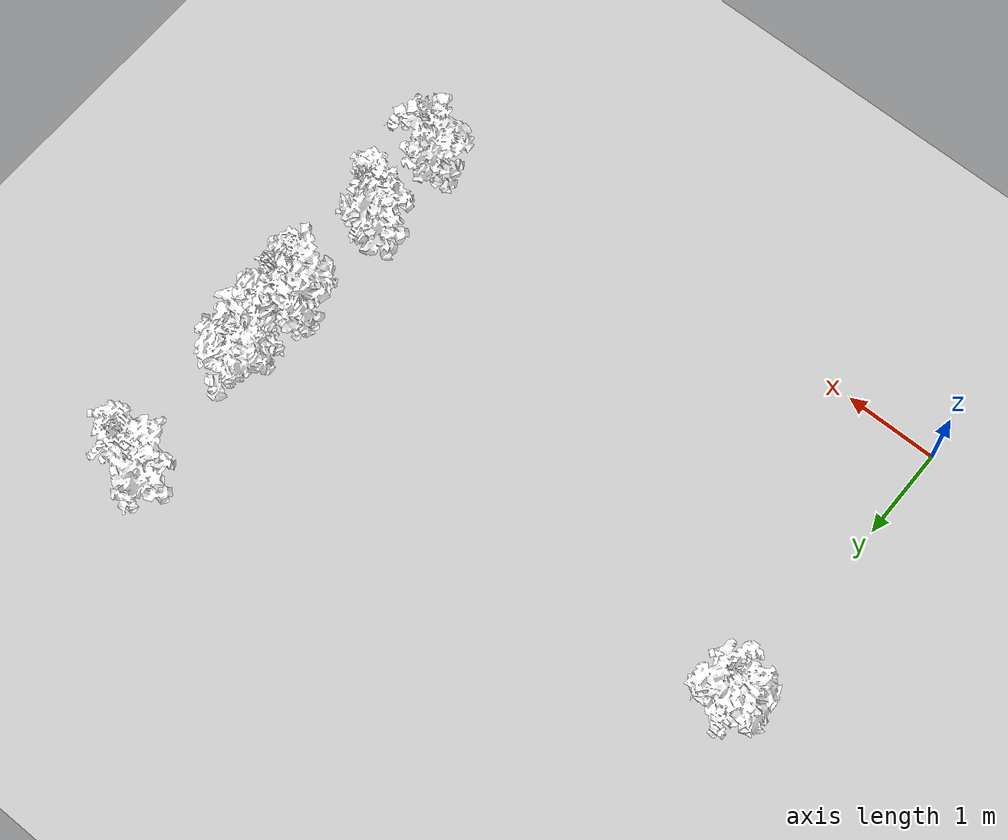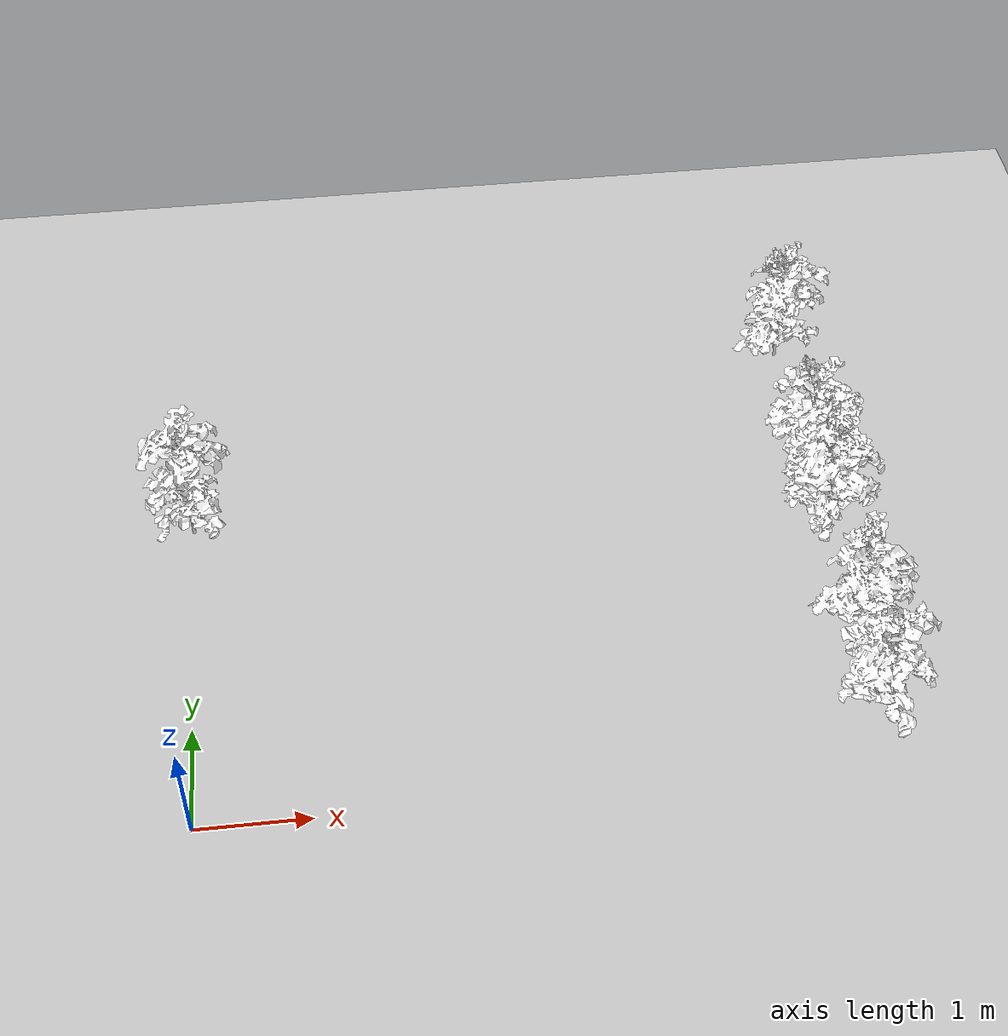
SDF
<sdf version="1.7">
 <world name="field">
  <physics name="1ms" type="ignored">
   <max_step_size>0.001</max_step_size>
   <real_time_factor>1</real_time_factor>
   <real_time_update_rate>1000</real_time_update_rate>
  </physics>
  <plugin name="ignition::gazebo::systems::Physics" filename="ignition-gazebo-physics-system"/>
  <plugin name="ignition::gazebo::systems::UserCommands" filename="ignition-gazebo-user-commands-system"/>
  <plugin name="ignition::gazebo::systems::SceneBroadcaster" filename="ignition-gazebo-scene-broadcaster-system"/>
  <plugin filename="ignition-gazebo-sensors-system" name="ignition::gazebo::systems::Sensors">
   <render_engine>ogre2</render_engine>
  </plugin>
  <scene><ambient>1 1 1 1</ambient><background>0.8 0.8 0.8 1</background><shadows>1</shadows></scene>
  <light name="sun" type="directional">
   <pose>0 0 10 0 -0 0</pose>
   <diffuse>0.8 0.8 0.8 1</diffuse>
   <specular>0.8 0.8 0.8 1</specular>
   <attenuation>
    <range>1000</range>
    <constant>0.9</constant>
    <linear>0.01</linear>
    <quadratic>0.001</quadratic>
   </attenuation>
   <direction>-0.5 0.1 -0.9</direction>
   <spot><inner_angle>0</inner_angle><outer_angle>0</outer_angle><falloff>0</falloff></spot>
  </light>
  <gravity>0 0 -9.8</gravity>
  <magnetic_field>6e-06 2.3e-05 -4.2e-05</magnetic_field>
  <atmosphere type="adiabatic"/>
  <include><uri>ground</uri><name>ground</name><pose>5.0 5.0 0 0 0 0</pose></include>
  <include><uri>tomato_11</uri><name>tomato_11</name><pose>0.0 3.3 0 0 0 0</pose></include>
  <include><uri>tomato_102</uri><name>tomato_102</name><pose>5.8999999999999995 0.6 0 0 0 0</pose></include>
  <include><uri>tomato_105</uri><name>tomato_105</name><pose>5.8999999999999995 1.5 0 0 0 0</pose></include>
  <include>
   <uri>tomato_109</uri>
   <name>tomato_109</name>
   <pose>5.8999999999999995 2.6999999999999997 0 0 0 0</pose>
  </include>
  <include><uri>tomato_110</uri><name>tomato_110</name><pose>5.8999999999999995 3.0 0 0 0 0</pose></include>
  <include>
   <uri>tomato_112</uri>
   <name>tomato_112</name>
   <pose>5.8999999999999995 3.5999999999999996 0 0 0 0</pose>
  </include>
  <include><uri>tomato_117</uri><name>tomato_117</name><pose>5.8999999999999995 5.1 0 0 0 0</pose></include>
 </world>
</sdf>

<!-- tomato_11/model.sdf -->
<sdf version="1.6">
  <model name="tomato_11">
    <static>true</static>
    <link name="link">
      <collision name="collision">
        <geometry>
          <box>
            <size>.1 .1 1</size>
          </box>
        </geometry>
      </collision>
      <visual name="branch">
        <geometry>
          <mesh>
            <uri>file://tomato_11/meshes/tomato.dae</uri>
            <submesh>
              <name>Branch1</name>
            </submesh>
          </mesh>
        </geometry>
        <material>
          <diffuse>1.0 1.0 1.0</diffuse>
          <pbr>
            <metal>
              <albedo_map>file://tomato_11/materials/textures/AG15brn1.png</albedo_map>
            </metal>
          </pbr>
        </material>
          <plugin filename="ignition-gazebo-label-system" name="ignition::gazebo::systems::Label">
            <label>2</label>
          </plugin>
      </visual>
      <visual name="leaf1">
        <geometry>
          <mesh>
            <uri>file://tomato_11/meshes/tomato.dae</uri>
            <submesh>
              <name>Leaf1</name>
            </submesh>
          </mesh>
        </geometry>
        <material>
          <diffuse>1.0 1.0 1.0</diffuse>
          <pbr>
            <metal>
              <albedo_map>file://tomato_11/materials/textures/AG15lef1.png</albedo_map>
            </metal>
          </pbr>
        </material>
          <plugin filename="ignition-gazebo-label-system" name="ignition::gazebo::systems::Label">
            <label>3</label>
          </plugin>
      </visual>
      <visual name="leaf2">
        <geometry>
          <mesh>
            <uri>file://tomato_11/meshes/tomato.dae</uri>
            <submesh>
              <name>Leaf2</name>
            </submesh>
          </mesh>
        </geometry>
        <material>
          <diffuse>1.0 1.0 1.0</diffuse>
          <pbr>
            <metal>
              <albedo_map>file://tomato_11/materials/textures/AG15lef2.png</albedo_map>
            </metal>
          </pbr>
        </material>
          <plugin filename="ignition-gazebo-label-system" name="ignition::gazebo::systems::Label">
            <label>3</label>
          </plugin>
      </visual>
      <visual name="fruit1">
        <geometry>
          <mesh>
            <uri>file://tomato_11/meshes/tomato.dae</uri>
            <submesh>
              <name>Fruit1</name>
            </submesh>
          </mesh>
        </geometry>
        <material>
          <diffuse>1.0 1.0 1.0</diffuse>
          <pbr>
            <metal>
              <albedo_map>file://tomato_11/materials/textures/AG15frt1.png</albedo_map>
            </metal>
          </pbr>
        </material>
          <plugin filename="ignition-gazebo-label-system" name="ignition::gazebo::systems::Label">
            <label>4</label>
          </plugin>
      </visual>
      <visual name="fruit2">
        <geometry>
          <mesh>
            <uri>file://tomato_11/meshes/tomato.dae</uri>
            <submesh>
              <name>Fruit2</name>
            </submesh>
          </mesh>
        </geometry>
        <material>
          <diffuse>1.0 1.0 1.0</diffuse>
          <pbr>
            <metal>
              <albedo_map>file://tomato_11/materials/textures/AG15frt2.png</albedo_map>
            </metal>
          </pbr>
        </material>
          <plugin filename="ignition-gazebo-label-system" name="ignition::gazebo::systems::Label">
            <label>4</label>
          </plugin>
      </visual>
      <visual name="fruit3">
        <geometry>
          <mesh>
            <uri>file://tomato_11/meshes/tomato.dae</uri>
            <submesh>
              <name>Fruit3</name>
            </submesh>
          </mesh>
        </geometry>
        <material>
          <diffuse>1.0 1.0 1.0</diffuse>
          <pbr>
            <metal>
              <albedo_map>file://tomato_11/materials/textures/AG15frt3.png</albedo_map>
            </metal>
          </pbr>
        </material>
      </visual>
          <plugin filename="ignition-gazebo-label-system" name="ignition::gazebo::systems::Label">
            <label>4</label>
          </plugin>
      <visual name="fruit4">
        <geometry>
          <mesh>
            <uri>file://tomato_11/meshes/tomato.dae</uri>
            <submesh>
              <name>Fruit4</name>
            </submesh>
          </mesh>
        </geometry>
        <material>
          <diffuse>1.0 1.0 1.0</diffuse>
          <pbr>
            <metal>
              <albedo_map>file://tomato_11/materials/textures/AG15frt4.png</albedo_map>
            </metal>
          </pbr>
        </material>
          <plugin filename="ignition-gazebo-label-system" name="ignition::gazebo::systems::Label">
            <label>4</label>
          </plugin>
      </visual>
      <visual name="blossom1">
        <geometry>
          <mesh>
            <uri>file://tomato_11/meshes/tomato.dae</uri>
            <submesh>
              <name>Blossom1</name>
            </submesh>
          </mesh>
        </geometry>
        <material>
          <diffuse>1.0 1.0 1.0</diffuse>
          <pbr>
            <metal>
              <albedo_map>file://tomato_11/materials/textures/AG15blo1.png</albedo_map>
            </metal>
          </pbr>
        </material>
          <plugin filename="ignition-gazebo-label-system" name="ignition::gazebo::systems::Label">
            <label>5</label>
          </plugin>
      </visual>
      <visual name="blossom2">
        <geometry>
          <mesh>
            <uri>file://tomato_11/meshes/tomato.dae</uri>
            <submesh>
              <name>Blossom2</name>
            </submesh>
          </mesh>
        </geometry>
        <material>
          <diffuse>1.0 1.0 1.0</diffuse>
          <pbr>
            <metal>
              <albedo_map>file://tomato_11/materials/textures/AG15blo2.png</albedo_map>
            </metal>
          </pbr>
        </material>
          <plugin filename="ignition-gazebo-label-system" name="ignition::gazebo::systems::Label">
            <label>5</label>
          </plugin>
      </visual>
      <visual name="blossom3">
        <geometry>
          <mesh>
            <uri>file://tomato_11/meshes/tomato.dae</uri>
            <submesh>
              <name>Blossom3</name>
            </submesh>
          </mesh>
        </geometry>
        <material>
          <diffuse>1.0 1.0 1.0</diffuse>
          <pbr>
            <metal>
              <albedo_map>file://tomato_11/materials/textures/AG15blo3.png</albedo_map>
            </metal>
          </pbr>
        </material>
          <plugin filename="ignition-gazebo-label-system" name="ignition::gazebo::systems::Label">
            <label>5</label>
          </plugin>
      </visual>
    </link>
  </model>
</sdf>

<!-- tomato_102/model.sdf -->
<sdf version="1.6">
  <model name="tomato_102">
    <static>true</static>
    <link name="link">
      <collision name="collision">
        <geometry>
          <box>
            <size>.1 .1 1</size>
          </box>
        </geometry>
      </collision>
      <visual name="branch">
        <geometry>
          <mesh>
            <uri>file://tomato_102/meshes/tomato.dae</uri>
            <submesh>
              <name>Branch1</name>
            </submesh>
          </mesh>
        </geometry>
        <material>
          <diffuse>1.0 1.0 1.0</diffuse>
          <pbr>
            <metal>
              <albedo_map>file://tomato_102/materials/textures/AG15brn1.png</albedo_map>
            </metal>
          </pbr>
        </material>
          <plugin filename="ignition-gazebo-label-system" name="ignition::gazebo::systems::Label">
            <label>2</label>
          </plugin>
      </visual>
      <visual name="leaf1">
        <geometry>
          <mesh>
            <uri>file://tomato_102/meshes/tomato.dae</uri>
            <submesh>
              <name>Leaf1</name>
            </submesh>
          </mesh>
        </geometry>
        <material>
          <diffuse>1.0 1.0 1.0</diffuse>
          <pbr>
            <metal>
              <albedo_map>file://tomato_102/materials/textures/AG15lef1.png</albedo_map>
            </metal>
          </pbr>
        </material>
          <plugin filename="ignition-gazebo-label-system" name="ignition::gazebo::systems::Label">
            <label>3</label>
          </plugin>
      </visual>
      <visual name="leaf2">
        <geometry>
          <mesh>
            <uri>file://tomato_102/meshes/tomato.dae</uri>
            <submesh>
              <name>Leaf2</name>
            </submesh>
          </mesh>
        </geometry>
        <material>
          <diffuse>1.0 1.0 1.0</diffuse>
          <pbr>
            <metal>
              <albedo_map>file://tomato_102/materials/textures/AG15lef2.png</albedo_map>
            </metal>
          </pbr>
        </material>
          <plugin filename="ignition-gazebo-label-system" name="ignition::gazebo::systems::Label">
            <label>3</label>
          </plugin>
      </visual>
      <visual name="fruit1">
        <geometry>
          <mesh>
            <uri>file://tomato_102/meshes/tomato.dae</uri>
            <submesh>
              <name>Fruit1</name>
            </submesh>
          </mesh>
        </geometry>
        <material>
          <diffuse>1.0 1.0 1.0</diffuse>
          <pbr>
            <metal>
              <albedo_map>file://tomato_102/materials/textures/AG15frt1.png</albedo_map>
            </metal>
          </pbr>
        </material>
          <plugin filename="ignition-gazebo-label-system" name="ignition::gazebo::systems::Label">
            <label>4</label>
          </plugin>
      </visual>
      <visual name="fruit2">
        <geometry>
          <mesh>
            <uri>file://tomato_102/meshes/tomato.dae</uri>
            <submesh>
              <name>Fruit2</name>
            </submesh>
          </mesh>
        </geometry>
        <material>
          <diffuse>1.0 1.0 1.0</diffuse>
          <pbr>
            <metal>
              <albedo_map>file://tomato_102/materials/textures/AG15frt2.png</albedo_map>
            </metal>
          </pbr>
        </material>
          <plugin filename="ignition-gazebo-label-system" name="ignition::gazebo::systems::Label">
            <label>4</label>
          </plugin>
      </visual>
      <visual name="fruit3">
        <geometry>
          <mesh>
            <uri>file://tomato_102/meshes/tomato.dae</uri>
            <submesh>
              <name>Fruit3</name>
            </submesh>
          </mesh>
        </geometry>
        <material>
          <diffuse>1.0 1.0 1.0</diffuse>
          <pbr>
            <metal>
              <albedo_map>file://tomato_102/materials/textures/AG15frt3.png</albedo_map>
            </metal>
          </pbr>
        </material>
      </visual>
          <plugin filename="ignition-gazebo-label-system" name="ignition::gazebo::systems::Label">
            <label>4</label>
          </plugin>
      <visual name="fruit4">
        <geometry>
          <mesh>
            <uri>file://tomato_102/meshes/tomato.dae</uri>
            <submesh>
              <name>Fruit4</name>
            </submesh>
          </mesh>
        </geometry>
        <material>
          <diffuse>1.0 1.0 1.0</diffuse>
          <pbr>
            <metal>
              <albedo_map>file://tomato_102/materials/textures/AG15frt4.png</albedo_map>
            </metal>
          </pbr>
        </material>
          <plugin filename="ignition-gazebo-label-system" name="ignition::gazebo::systems::Label">
            <label>4</label>
          </plugin>
      </visual>
      <visual name="blossom1">
        <geometry>
          <mesh>
            <uri>file://tomato_102/meshes/tomato.dae</uri>
            <submesh>
              <name>Blossom1</name>
            </submesh>
          </mesh>
        </geometry>
        <material>
          <diffuse>1.0 1.0 1.0</diffuse>
          <pbr>
            <metal>
              <albedo_map>file://tomato_102/materials/textures/AG15blo1.png</albedo_map>
            </metal>
          </pbr>
        </material>
          <plugin filename="ignition-gazebo-label-system" name="ignition::gazebo::systems::Label">
            <label>5</label>
          </plugin>
      </visual>
      <visual name="blossom2">
        <geometry>
          <mesh>
            <uri>file://tomato_102/meshes/tomato.dae</uri>
            <submesh>
              <name>Blossom2</name>
            </submesh>
          </mesh>
        </geometry>
        <material>
          <diffuse>1.0 1.0 1.0</diffuse>
          <pbr>
            <metal>
              <albedo_map>file://tomato_102/materials/textures/AG15blo2.png</albedo_map>
            </metal>
          </pbr>
        </material>
          <plugin filename="ignition-gazebo-label-system" name="ignition::gazebo::systems::Label">
            <label>5</label>
          </plugin>
      </visual>
      <visual name="blossom3">
        <geometry>
          <mesh>
            <uri>file://tomato_102/meshes/tomato.dae</uri>
            <submesh>
              <name>Blossom3</name>
            </submesh>
          </mesh>
        </geometry>
        <material>
          <diffuse>1.0 1.0 1.0</diffuse>
          <pbr>
            <metal>
              <albedo_map>file://tomato_102/materials/textures/AG15blo3.png</albedo_map>
            </metal>
          </pbr>
        </material>
          <plugin filename="ignition-gazebo-label-system" name="ignition::gazebo::systems::Label">
            <label>5</label>
          </plugin>
      </visual>
    </link>
  </model>
</sdf>

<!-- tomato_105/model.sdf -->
<sdf version="1.6">
  <model name="tomato_105">
    <static>true</static>
    <link name="link">
      <collision name="collision">
        <geometry>
          <box>
            <size>.1 .1 1</size>
          </box>
        </geometry>
      </collision>
      <visual name="branch">
        <geometry>
          <mesh>
            <uri>file://tomato_105/meshes/tomato.dae</uri>
            <submesh>
              <name>Branch1</name>
            </submesh>
          </mesh>
        </geometry>
        <material>
          <diffuse>1.0 1.0 1.0</diffuse>
          <pbr>
            <metal>
              <albedo_map>file://tomato_105/materials/textures/AG15brn1.png</albedo_map>
            </metal>
          </pbr>
        </material>
          <plugin filename="ignition-gazebo-label-system" name="ignition::gazebo::systems::Label">
            <label>2</label>
          </plugin>
      </visual>
      <visual name="leaf1">
        <geometry>
          <mesh>
            <uri>file://tomato_105/meshes/tomato.dae</uri>
            <submesh>
              <name>Leaf1</name>
            </submesh>
          </mesh>
        </geometry>
        <material>
          <diffuse>1.0 1.0 1.0</diffuse>
          <pbr>
            <metal>
              <albedo_map>file://tomato_105/materials/textures/AG15lef1.png</albedo_map>
            </metal>
          </pbr>
        </material>
          <plugin filename="ignition-gazebo-label-system" name="ignition::gazebo::systems::Label">
            <label>3</label>
          </plugin>
      </visual>
      <visual name="leaf2">
        <geometry>
          <mesh>
            <uri>file://tomato_105/meshes/tomato.dae</uri>
            <submesh>
              <name>Leaf2</name>
            </submesh>
          </mesh>
        </geometry>
        <material>
          <diffuse>1.0 1.0 1.0</diffuse>
          <pbr>
            <metal>
              <albedo_map>file://tomato_105/materials/textures/AG15lef2.png</albedo_map>
            </metal>
          </pbr>
        </material>
          <plugin filename="ignition-gazebo-label-system" name="ignition::gazebo::systems::Label">
            <label>3</label>
          </plugin>
      </visual>
      <visual name="fruit1">
        <geometry>
          <mesh>
            <uri>file://tomato_105/meshes/tomato.dae</uri>
            <submesh>
              <name>Fruit1</name>
            </submesh>
          </mesh>
        </geometry>
        <material>
          <diffuse>1.0 1.0 1.0</diffuse>
          <pbr>
            <metal>
              <albedo_map>file://tomato_105/materials/textures/AG15frt1.png</albedo_map>
            </metal>
          </pbr>
        </material>
          <plugin filename="ignition-gazebo-label-system" name="ignition::gazebo::systems::Label">
            <label>4</label>
          </plugin>
      </visual>
      <visual name="fruit2">
        <geometry>
          <mesh>
            <uri>file://tomato_105/meshes/tomato.dae</uri>
            <submesh>
              <name>Fruit2</name>
            </submesh>
          </mesh>
        </geometry>
        <material>
          <diffuse>1.0 1.0 1.0</diffuse>
          <pbr>
            <metal>
              <albedo_map>file://tomato_105/materials/textures/AG15frt2.png</albedo_map>
            </metal>
          </pbr>
        </material>
          <plugin filename="ignition-gazebo-label-system" name="ignition::gazebo::systems::Label">
            <label>4</label>
          </plugin>
      </visual>
      <visual name="fruit3">
        <geometry>
          <mesh>
            <uri>file://tomato_105/meshes/tomato.dae</uri>
            <submesh>
              <name>Fruit3</name>
            </submesh>
          </mesh>
        </geometry>
        <material>
          <diffuse>1.0 1.0 1.0</diffuse>
          <pbr>
            <metal>
              <albedo_map>file://tomato_105/materials/textures/AG15frt3.png</albedo_map>
            </metal>
          </pbr>
        </material>
      </visual>
          <plugin filename="ignition-gazebo-label-system" name="ignition::gazebo::systems::Label">
            <label>4</label>
          </plugin>
      <visual name="fruit4">
        <geometry>
          <mesh>
            <uri>file://tomato_105/meshes/tomato.dae</uri>
            <submesh>
              <name>Fruit4</name>
            </submesh>
          </mesh>
        </geometry>
        <material>
          <diffuse>1.0 1.0 1.0</diffuse>
          <pbr>
            <metal>
              <albedo_map>file://tomato_105/materials/textures/AG15frt4.png</albedo_map>
            </metal>
          </pbr>
        </material>
          <plugin filename="ignition-gazebo-label-system" name="ignition::gazebo::systems::Label">
            <label>4</label>
          </plugin>
      </visual>
      <visual name="blossom1">
        <geometry>
          <mesh>
            <uri>file://tomato_105/meshes/tomato.dae</uri>
            <submesh>
              <name>Blossom1</name>
            </submesh>
          </mesh>
        </geometry>
        <material>
          <diffuse>1.0 1.0 1.0</diffuse>
          <pbr>
            <metal>
              <albedo_map>file://tomato_105/materials/textures/AG15blo1.png</albedo_map>
            </metal>
          </pbr>
        </material>
          <plugin filename="ignition-gazebo-label-system" name="ignition::gazebo::systems::Label">
            <label>5</label>
          </plugin>
      </visual>
      <visual name="blossom2">
        <geometry>
          <mesh>
            <uri>file://tomato_105/meshes/tomato.dae</uri>
            <submesh>
              <name>Blossom2</name>
            </submesh>
          </mesh>
        </geometry>
        <material>
          <diffuse>1.0 1.0 1.0</diffuse>
          <pbr>
            <metal>
              <albedo_map>file://tomato_105/materials/textures/AG15blo2.png</albedo_map>
            </metal>
          </pbr>
        </material>
          <plugin filename="ignition-gazebo-label-system" name="ignition::gazebo::systems::Label">
            <label>5</label>
          </plugin>
      </visual>
      <visual name="blossom3">
        <geometry>
          <mesh>
            <uri>file://tomato_105/meshes/tomato.dae</uri>
            <submesh>
              <name>Blossom3</name>
            </submesh>
          </mesh>
        </geometry>
        <material>
          <diffuse>1.0 1.0 1.0</diffuse>
          <pbr>
            <metal>
              <albedo_map>file://tomato_105/materials/textures/AG15blo3.png</albedo_map>
            </metal>
          </pbr>
        </material>
          <plugin filename="ignition-gazebo-label-system" name="ignition::gazebo::systems::Label">
            <label>5</label>
          </plugin>
      </visual>
    </link>
  </model>
</sdf>

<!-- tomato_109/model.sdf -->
<sdf version="1.6">
  <model name="tomato_109">
    <static>true</static>
    <link name="link">
      <collision name="collision">
        <geometry>
          <box>
            <size>.1 .1 1</size>
          </box>
        </geometry>
      </collision>
      <visual name="branch">
        <geometry>
          <mesh>
            <uri>file://tomato_109/meshes/tomato.dae</uri>
            <submesh>
              <name>Branch1</name>
            </submesh>
          </mesh>
        </geometry>
        <material>
          <diffuse>1.0 1.0 1.0</diffuse>
          <pbr>
            <metal>
              <albedo_map>file://tomato_109/materials/textures/AG15brn1.png</albedo_map>
            </metal>
          </pbr>
        </material>
          <plugin filename="ignition-gazebo-label-system" name="ignition::gazebo::systems::Label">
            <label>2</label>
          </plugin>
      </visual>
      <visual name="leaf1">
        <geometry>
          <mesh>
            <uri>file://tomato_109/meshes/tomato.dae</uri>
            <submesh>
              <name>Leaf1</name>
            </submesh>
          </mesh>
        </geometry>
        <material>
          <diffuse>1.0 1.0 1.0</diffuse>
          <pbr>
            <metal>
              <albedo_map>file://tomato_109/materials/textures/AG15lef1.png</albedo_map>
            </metal>
          </pbr>
        </material>
          <plugin filename="ignition-gazebo-label-system" name="ignition::gazebo::systems::Label">
            <label>3</label>
          </plugin>
      </visual>
      <visual name="leaf2">
        <geometry>
          <mesh>
            <uri>file://tomato_109/meshes/tomato.dae</uri>
            <submesh>
              <name>Leaf2</name>
            </submesh>
          </mesh>
        </geometry>
        <material>
          <diffuse>1.0 1.0 1.0</diffuse>
          <pbr>
            <metal>
              <albedo_map>file://tomato_109/materials/textures/AG15lef2.png</albedo_map>
            </metal>
          </pbr>
        </material>
          <plugin filename="ignition-gazebo-label-system" name="ignition::gazebo::systems::Label">
            <label>3</label>
          </plugin>
      </visual>
      <visual name="fruit1">
        <geometry>
          <mesh>
            <uri>file://tomato_109/meshes/tomato.dae</uri>
            <submesh>
              <name>Fruit1</name>
            </submesh>
          </mesh>
        </geometry>
        <material>
          <diffuse>1.0 1.0 1.0</diffuse>
          <pbr>
            <metal>
              <albedo_map>file://tomato_109/materials/textures/AG15frt1.png</albedo_map>
            </metal>
          </pbr>
        </material>
          <plugin filename="ignition-gazebo-label-system" name="ignition::gazebo::systems::Label">
            <label>4</label>
          </plugin>
      </visual>
      <visual name="fruit2">
        <geometry>
          <mesh>
            <uri>file://tomato_109/meshes/tomato.dae</uri>
            <submesh>
              <name>Fruit2</name>
            </submesh>
          </mesh>
        </geometry>
        <material>
          <diffuse>1.0 1.0 1.0</diffuse>
          <pbr>
            <metal>
              <albedo_map>file://tomato_109/materials/textures/AG15frt2.png</albedo_map>
            </metal>
          </pbr>
        </material>
          <plugin filename="ignition-gazebo-label-system" name="ignition::gazebo::systems::Label">
            <label>4</label>
          </plugin>
      </visual>
      <visual name="fruit3">
        <geometry>
          <mesh>
            <uri>file://tomato_109/meshes/tomato.dae</uri>
            <submesh>
              <name>Fruit3</name>
            </submesh>
          </mesh>
        </geometry>
        <material>
          <diffuse>1.0 1.0 1.0</diffuse>
          <pbr>
            <metal>
              <albedo_map>file://tomato_109/materials/textures/AG15frt3.png</albedo_map>
            </metal>
          </pbr>
        </material>
      </visual>
          <plugin filename="ignition-gazebo-label-system" name="ignition::gazebo::systems::Label">
            <label>4</label>
          </plugin>
      <visual name="fruit4">
        <geometry>
          <mesh>
            <uri>file://tomato_109/meshes/tomato.dae</uri>
            <submesh>
              <name>Fruit4</name>
            </submesh>
          </mesh>
        </geometry>
        <material>
          <diffuse>1.0 1.0 1.0</diffuse>
          <pbr>
            <metal>
              <albedo_map>file://tomato_109/materials/textures/AG15frt4.png</albedo_map>
            </metal>
          </pbr>
        </material>
          <plugin filename="ignition-gazebo-label-system" name="ignition::gazebo::systems::Label">
            <label>4</label>
          </plugin>
      </visual>
      <visual name="blossom1">
        <geometry>
          <mesh>
            <uri>file://tomato_109/meshes/tomato.dae</uri>
            <submesh>
              <name>Blossom1</name>
            </submesh>
          </mesh>
        </geometry>
        <material>
          <diffuse>1.0 1.0 1.0</diffuse>
          <pbr>
            <metal>
              <albedo_map>file://tomato_109/materials/textures/AG15blo1.png</albedo_map>
            </metal>
          </pbr>
        </material>
          <plugin filename="ignition-gazebo-label-system" name="ignition::gazebo::systems::Label">
            <label>5</label>
          </plugin>
      </visual>
      <visual name="blossom2">
        <geometry>
          <mesh>
            <uri>file://tomato_109/meshes/tomato.dae</uri>
            <submesh>
              <name>Blossom2</name>
            </submesh>
          </mesh>
        </geometry>
        <material>
          <diffuse>1.0 1.0 1.0</diffuse>
          <pbr>
            <metal>
              <albedo_map>file://tomato_109/materials/textures/AG15blo2.png</albedo_map>
            </metal>
          </pbr>
        </material>
          <plugin filename="ignition-gazebo-label-system" name="ignition::gazebo::systems::Label">
            <label>5</label>
          </plugin>
      </visual>
      <visual name="blossom3">
        <geometry>
          <mesh>
            <uri>file://tomato_109/meshes/tomato.dae</uri>
            <submesh>
              <name>Blossom3</name>
            </submesh>
          </mesh>
        </geometry>
        <material>
          <diffuse>1.0 1.0 1.0</diffuse>
          <pbr>
            <metal>
              <albedo_map>file://tomato_109/materials/textures/AG15blo3.png</albedo_map>
            </metal>
          </pbr>
        </material>
          <plugin filename="ignition-gazebo-label-system" name="ignition::gazebo::systems::Label">
            <label>5</label>
          </plugin>
      </visual>
    </link>
  </model>
</sdf>

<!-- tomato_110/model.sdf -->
<sdf version="1.6">
  <model name="tomato_110">
    <static>true</static>
    <link name="link">
      <collision name="collision">
        <geometry>
          <box>
            <size>.1 .1 1</size>
          </box>
        </geometry>
      </collision>
      <visual name="branch">
        <geometry>
          <mesh>
            <uri>file://tomato_110/meshes/tomato.dae</uri>
            <submesh>
              <name>Branch1</name>
            </submesh>
          </mesh>
        </geometry>
        <material>
          <diffuse>1.0 1.0 1.0</diffuse>
          <pbr>
            <metal>
              <albedo_map>file://tomato_110/materials/textures/AG15brn1.png</albedo_map>
            </metal>
          </pbr>
        </material>
          <plugin filename="ignition-gazebo-label-system" name="ignition::gazebo::systems::Label">
            <label>2</label>
          </plugin>
      </visual>
      <visual name="leaf1">
        <geometry>
          <mesh>
            <uri>file://tomato_110/meshes/tomato.dae</uri>
            <submesh>
              <name>Leaf1</name>
            </submesh>
          </mesh>
        </geometry>
        <material>
          <diffuse>1.0 1.0 1.0</diffuse>
          <pbr>
            <metal>
              <albedo_map>file://tomato_110/materials/textures/AG15lef1.png</albedo_map>
            </metal>
          </pbr>
        </material>
          <plugin filename="ignition-gazebo-label-system" name="ignition::gazebo::systems::Label">
            <label>3</label>
          </plugin>
      </visual>
      <visual name="leaf2">
        <geometry>
          <mesh>
            <uri>file://tomato_110/meshes/tomato.dae</uri>
            <submesh>
              <name>Leaf2</name>
            </submesh>
          </mesh>
        </geometry>
        <material>
          <diffuse>1.0 1.0 1.0</diffuse>
          <pbr>
            <metal>
              <albedo_map>file://tomato_110/materials/textures/AG15lef2.png</albedo_map>
            </metal>
          </pbr>
        </material>
          <plugin filename="ignition-gazebo-label-system" name="ignition::gazebo::systems::Label">
            <label>3</label>
          </plugin>
      </visual>
      <visual name="fruit1">
        <geometry>
          <mesh>
            <uri>file://tomato_110/meshes/tomato.dae</uri>
            <submesh>
              <name>Fruit1</name>
            </submesh>
          </mesh>
        </geometry>
        <material>
          <diffuse>1.0 1.0 1.0</diffuse>
          <pbr>
            <metal>
              <albedo_map>file://tomato_110/materials/textures/AG15frt1.png</albedo_map>
            </metal>
          </pbr>
        </material>
          <plugin filename="ignition-gazebo-label-system" name="ignition::gazebo::systems::Label">
            <label>4</label>
          </plugin>
      </visual>
      <visual name="fruit2">
        <geometry>
          <mesh>
            <uri>file://tomato_110/meshes/tomato.dae</uri>
            <submesh>
              <name>Fruit2</name>
            </submesh>
          </mesh>
        </geometry>
        <material>
          <diffuse>1.0 1.0 1.0</diffuse>
          <pbr>
            <metal>
              <albedo_map>file://tomato_110/materials/textures/AG15frt2.png</albedo_map>
            </metal>
          </pbr>
        </material>
          <plugin filename="ignition-gazebo-label-system" name="ignition::gazebo::systems::Label">
            <label>4</label>
          </plugin>
      </visual>
      <visual name="fruit3">
        <geometry>
          <mesh>
            <uri>file://tomato_110/meshes/tomato.dae</uri>
            <submesh>
              <name>Fruit3</name>
            </submesh>
          </mesh>
        </geometry>
        <material>
          <diffuse>1.0 1.0 1.0</diffuse>
          <pbr>
            <metal>
              <albedo_map>file://tomato_110/materials/textures/AG15frt3.png</albedo_map>
            </metal>
          </pbr>
        </material>
      </visual>
          <plugin filename="ignition-gazebo-label-system" name="ignition::gazebo::systems::Label">
            <label>4</label>
          </plugin>
      <visual name="fruit4">
        <geometry>
          <mesh>
            <uri>file://tomato_110/meshes/tomato.dae</uri>
            <submesh>
              <name>Fruit4</name>
            </submesh>
          </mesh>
        </geometry>
        <material>
          <diffuse>1.0 1.0 1.0</diffuse>
          <pbr>
            <metal>
              <albedo_map>file://tomato_110/materials/textures/AG15frt4.png</albedo_map>
            </metal>
          </pbr>
        </material>
          <plugin filename="ignition-gazebo-label-system" name="ignition::gazebo::systems::Label">
            <label>4</label>
          </plugin>
      </visual>
      <visual name="blossom1">
        <geometry>
          <mesh>
            <uri>file://tomato_110/meshes/tomato.dae</uri>
            <submesh>
              <name>Blossom1</name>
            </submesh>
          </mesh>
        </geometry>
        <material>
          <diffuse>1.0 1.0 1.0</diffuse>
          <pbr>
            <metal>
              <albedo_map>file://tomato_110/materials/textures/AG15blo1.png</albedo_map>
            </metal>
          </pbr>
        </material>
          <plugin filename="ignition-gazebo-label-system" name="ignition::gazebo::systems::Label">
            <label>5</label>
          </plugin>
      </visual>
      <visual name="blossom2">
        <geometry>
          <mesh>
            <uri>file://tomato_110/meshes/tomato.dae</uri>
            <submesh>
              <name>Blossom2</name>
            </submesh>
          </mesh>
        </geometry>
        <material>
          <diffuse>1.0 1.0 1.0</diffuse>
          <pbr>
            <metal>
              <albedo_map>file://tomato_110/materials/textures/AG15blo2.png</albedo_map>
            </metal>
          </pbr>
        </material>
          <plugin filename="ignition-gazebo-label-system" name="ignition::gazebo::systems::Label">
            <label>5</label>
          </plugin>
      </visual>
      <visual name="blossom3">
        <geometry>
          <mesh>
            <uri>file://tomato_110/meshes/tomato.dae</uri>
            <submesh>
              <name>Blossom3</name>
            </submesh>
          </mesh>
        </geometry>
        <material>
          <diffuse>1.0 1.0 1.0</diffuse>
          <pbr>
            <metal>
              <albedo_map>file://tomato_110/materials/textures/AG15blo3.png</albedo_map>
            </metal>
          </pbr>
        </material>
          <plugin filename="ignition-gazebo-label-system" name="ignition::gazebo::systems::Label">
            <label>5</label>
          </plugin>
      </visual>
    </link>
  </model>
</sdf>

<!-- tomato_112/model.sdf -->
<sdf version="1.6">
  <model name="tomato_112">
    <static>true</static>
    <link name="link">
      <collision name="collision">
        <geometry>
          <box>
            <size>.1 .1 1</size>
          </box>
        </geometry>
      </collision>
      <visual name="branch">
        <geometry>
          <mesh>
            <uri>file://tomato_112/meshes/tomato.dae</uri>
            <submesh>
              <name>Branch1</name>
            </submesh>
          </mesh>
        </geometry>
        <material>
          <diffuse>1.0 1.0 1.0</diffuse>
          <pbr>
            <metal>
              <albedo_map>file://tomato_112/materials/textures/AG15brn1.png</albedo_map>
            </metal>
          </pbr>
        </material>
          <plugin filename="ignition-gazebo-label-system" name="ignition::gazebo::systems::Label">
            <label>2</label>
          </plugin>
      </visual>
      <visual name="leaf1">
        <geometry>
          <mesh>
            <uri>file://tomato_112/meshes/tomato.dae</uri>
            <submesh>
              <name>Leaf1</name>
            </submesh>
          </mesh>
        </geometry>
        <material>
          <diffuse>1.0 1.0 1.0</diffuse>
          <pbr>
            <metal>
              <albedo_map>file://tomato_112/materials/textures/AG15lef1.png</albedo_map>
            </metal>
          </pbr>
        </material>
          <plugin filename="ignition-gazebo-label-system" name="ignition::gazebo::systems::Label">
            <label>3</label>
          </plugin>
      </visual>
      <visual name="leaf2">
        <geometry>
          <mesh>
            <uri>file://tomato_112/meshes/tomato.dae</uri>
            <submesh>
              <name>Leaf2</name>
            </submesh>
          </mesh>
        </geometry>
        <material>
          <diffuse>1.0 1.0 1.0</diffuse>
          <pbr>
            <metal>
              <albedo_map>file://tomato_112/materials/textures/AG15lef2.png</albedo_map>
            </metal>
          </pbr>
        </material>
          <plugin filename="ignition-gazebo-label-system" name="ignition::gazebo::systems::Label">
            <label>3</label>
          </plugin>
      </visual>
      <visual name="fruit1">
        <geometry>
          <mesh>
            <uri>file://tomato_112/meshes/tomato.dae</uri>
            <submesh>
              <name>Fruit1</name>
            </submesh>
          </mesh>
        </geometry>
        <material>
          <diffuse>1.0 1.0 1.0</diffuse>
          <pbr>
            <metal>
              <albedo_map>file://tomato_112/materials/textures/AG15frt1.png</albedo_map>
            </metal>
          </pbr>
        </material>
          <plugin filename="ignition-gazebo-label-system" name="ignition::gazebo::systems::Label">
            <label>4</label>
          </plugin>
      </visual>
      <visual name="fruit2">
        <geometry>
          <mesh>
            <uri>file://tomato_112/meshes/tomato.dae</uri>
            <submesh>
              <name>Fruit2</name>
            </submesh>
          </mesh>
        </geometry>
        <material>
          <diffuse>1.0 1.0 1.0</diffuse>
          <pbr>
            <metal>
              <albedo_map>file://tomato_112/materials/textures/AG15frt2.png</albedo_map>
            </metal>
          </pbr>
        </material>
          <plugin filename="ignition-gazebo-label-system" name="ignition::gazebo::systems::Label">
            <label>4</label>
          </plugin>
      </visual>
      <visual name="fruit3">
        <geometry>
          <mesh>
            <uri>file://tomato_112/meshes/tomato.dae</uri>
            <submesh>
              <name>Fruit3</name>
            </submesh>
          </mesh>
        </geometry>
        <material>
          <diffuse>1.0 1.0 1.0</diffuse>
          <pbr>
            <metal>
              <albedo_map>file://tomato_112/materials/textures/AG15frt3.png</albedo_map>
            </metal>
          </pbr>
        </material>
      </visual>
          <plugin filename="ignition-gazebo-label-system" name="ignition::gazebo::systems::Label">
            <label>4</label>
          </plugin>
      <visual name="fruit4">
        <geometry>
          <mesh>
            <uri>file://tomato_112/meshes/tomato.dae</uri>
            <submesh>
              <name>Fruit4</name>
            </submesh>
          </mesh>
        </geometry>
        <material>
          <diffuse>1.0 1.0 1.0</diffuse>
          <pbr>
            <metal>
              <albedo_map>file://tomato_112/materials/textures/AG15frt4.png</albedo_map>
            </metal>
          </pbr>
        </material>
          <plugin filename="ignition-gazebo-label-system" name="ignition::gazebo::systems::Label">
            <label>4</label>
          </plugin>
      </visual>
      <visual name="blossom1">
        <geometry>
          <mesh>
            <uri>file://tomato_112/meshes/tomato.dae</uri>
            <submesh>
              <name>Blossom1</name>
            </submesh>
          </mesh>
        </geometry>
        <material>
          <diffuse>1.0 1.0 1.0</diffuse>
          <pbr>
            <metal>
              <albedo_map>file://tomato_112/materials/textures/AG15blo1.png</albedo_map>
            </metal>
          </pbr>
        </material>
          <plugin filename="ignition-gazebo-label-system" name="ignition::gazebo::systems::Label">
            <label>5</label>
          </plugin>
      </visual>
      <visual name="blossom2">
        <geometry>
          <mesh>
            <uri>file://tomato_112/meshes/tomato.dae</uri>
            <submesh>
              <name>Blossom2</name>
            </submesh>
          </mesh>
        </geometry>
        <material>
          <diffuse>1.0 1.0 1.0</diffuse>
          <pbr>
            <metal>
              <albedo_map>file://tomato_112/materials/textures/AG15blo2.png</albedo_map>
            </metal>
          </pbr>
        </material>
          <plugin filename="ignition-gazebo-label-system" name="ignition::gazebo::systems::Label">
            <label>5</label>
          </plugin>
      </visual>
      <visual name="blossom3">
        <geometry>
          <mesh>
            <uri>file://tomato_112/meshes/tomato.dae</uri>
            <submesh>
              <name>Blossom3</name>
            </submesh>
          </mesh>
        </geometry>
        <material>
          <diffuse>1.0 1.0 1.0</diffuse>
          <pbr>
            <metal>
              <albedo_map>file://tomato_112/materials/textures/AG15blo3.png</albedo_map>
            </metal>
          </pbr>
        </material>
          <plugin filename="ignition-gazebo-label-system" name="ignition::gazebo::systems::Label">
            <label>5</label>
          </plugin>
      </visual>
    </link>
  </model>
</sdf>

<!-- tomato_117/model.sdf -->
<sdf version="1.6">
  <model name="tomato_117">
    <static>true</static>
    <link name="link">
      <collision name="collision">
        <geometry>
          <box>
            <size>.1 .1 1</size>
          </box>
        </geometry>
      </collision>
      <visual name="branch">
        <geometry>
          <mesh>
            <uri>file://tomato_117/meshes/tomato.dae</uri>
            <submesh>
              <name>Branch1</name>
            </submesh>
          </mesh>
        </geometry>
        <material>
          <diffuse>1.0 1.0 1.0</diffuse>
          <pbr>
            <metal>
              <albedo_map>file://tomato_117/materials/textures/AG15brn1.png</albedo_map>
            </metal>
          </pbr>
        </material>
          <plugin filename="ignition-gazebo-label-system" name="ignition::gazebo::systems::Label">
            <label>2</label>
          </plugin>
      </visual>
      <visual name="leaf1">
        <geometry>
          <mesh>
            <uri>file://tomato_117/meshes/tomato.dae</uri>
            <submesh>
              <name>Leaf1</name>
            </submesh>
          </mesh>
        </geometry>
        <material>
          <diffuse>1.0 1.0 1.0</diffuse>
          <pbr>
            <metal>
              <albedo_map>file://tomato_117/materials/textures/AG15lef1.png</albedo_map>
            </metal>
          </pbr>
        </material>
          <plugin filename="ignition-gazebo-label-system" name="ignition::gazebo::systems::Label">
            <label>3</label>
          </plugin>
      </visual>
      <visual name="leaf2">
        <geometry>
          <mesh>
            <uri>file://tomato_117/meshes/tomato.dae</uri>
            <submesh>
              <name>Leaf2</name>
            </submesh>
          </mesh>
        </geometry>
        <material>
          <diffuse>1.0 1.0 1.0</diffuse>
          <pbr>
            <metal>
              <albedo_map>file://tomato_117/materials/textures/AG15lef2.png</albedo_map>
            </metal>
          </pbr>
        </material>
          <plugin filename="ignition-gazebo-label-system" name="ignition::gazebo::systems::Label">
            <label>3</label>
          </plugin>
      </visual>
      <visual name="fruit1">
        <geometry>
          <mesh>
            <uri>file://tomato_117/meshes/tomato.dae</uri>
            <submesh>
              <name>Fruit1</name>
            </submesh>
          </mesh>
        </geometry>
        <material>
          <diffuse>1.0 1.0 1.0</diffuse>
          <pbr>
            <metal>
              <albedo_map>file://tomato_117/materials/textures/AG15frt1.png</albedo_map>
            </metal>
          </pbr>
        </material>
          <plugin filename="ignition-gazebo-label-system" name="ignition::gazebo::systems::Label">
            <label>4</label>
          </plugin>
      </visual>
      <visual name="fruit2">
        <geometry>
          <mesh>
            <uri>file://tomato_117/meshes/tomato.dae</uri>
            <submesh>
              <name>Fruit2</name>
            </submesh>
          </mesh>
        </geometry>
        <material>
          <diffuse>1.0 1.0 1.0</diffuse>
          <pbr>
            <metal>
              <albedo_map>file://tomato_117/materials/textures/AG15frt2.png</albedo_map>
            </metal>
          </pbr>
        </material>
          <plugin filename="ignition-gazebo-label-system" name="ignition::gazebo::systems::Label">
            <label>4</label>
          </plugin>
      </visual>
      <visual name="fruit3">
        <geometry>
          <mesh>
            <uri>file://tomato_117/meshes/tomato.dae</uri>
            <submesh>
              <name>Fruit3</name>
            </submesh>
          </mesh>
        </geometry>
        <material>
          <diffuse>1.0 1.0 1.0</diffuse>
          <pbr>
            <metal>
              <albedo_map>file://tomato_117/materials/textures/AG15frt3.png</albedo_map>
            </metal>
          </pbr>
        </material>
      </visual>
          <plugin filename="ignition-gazebo-label-system" name="ignition::gazebo::systems::Label">
            <label>4</label>
          </plugin>
      <visual name="fruit4">
        <geometry>
          <mesh>
            <uri>file://tomato_117/meshes/tomato.dae</uri>
            <submesh>
              <name>Fruit4</name>
            </submesh>
          </mesh>
        </geometry>
        <material>
          <diffuse>1.0 1.0 1.0</diffuse>
          <pbr>
            <metal>
              <albedo_map>file://tomato_117/materials/textures/AG15frt4.png</albedo_map>
            </metal>
          </pbr>
        </material>
          <plugin filename="ignition-gazebo-label-system" name="ignition::gazebo::systems::Label">
            <label>4</label>
          </plugin>
      </visual>
      <visual name="blossom1">
        <geometry>
          <mesh>
            <uri>file://tomato_117/meshes/tomato.dae</uri>
            <submesh>
              <name>Blossom1</name>
            </submesh>
          </mesh>
        </geometry>
        <material>
          <diffuse>1.0 1.0 1.0</diffuse>
          <pbr>
            <metal>
              <albedo_map>file://tomato_117/materials/textures/AG15blo1.png</albedo_map>
            </metal>
          </pbr>
        </material>
          <plugin filename="ignition-gazebo-label-system" name="ignition::gazebo::systems::Label">
            <label>5</label>
          </plugin>
      </visual>
      <visual name="blossom2">
        <geometry>
          <mesh>
            <uri>file://tomato_117/meshes/tomato.dae</uri>
            <submesh>
              <name>Blossom2</name>
            </submesh>
          </mesh>
        </geometry>
        <material>
          <diffuse>1.0 1.0 1.0</diffuse>
          <pbr>
            <metal>
              <albedo_map>file://tomato_117/materials/textures/AG15blo2.png</albedo_map>
            </metal>
          </pbr>
        </material>
          <plugin filename="ignition-gazebo-label-system" name="ignition::gazebo::systems::Label">
            <label>5</label>
          </plugin>
      </visual>
      <visual name="blossom3">
        <geometry>
          <mesh>
            <uri>file://tomato_117/meshes/tomato.dae</uri>
            <submesh>
              <name>Blossom3</name>
            </submesh>
          </mesh>
        </geometry>
        <material>
          <diffuse>1.0 1.0 1.0</diffuse>
          <pbr>
            <metal>
              <albedo_map>file://tomato_117/materials/textures/AG15blo3.png</albedo_map>
            </metal>
          </pbr>
        </material>
          <plugin filename="ignition-gazebo-label-system" name="ignition::gazebo::systems::Label">
            <label>5</label>
          </plugin>
      </visual>
    </link>
  </model>
</sdf>
